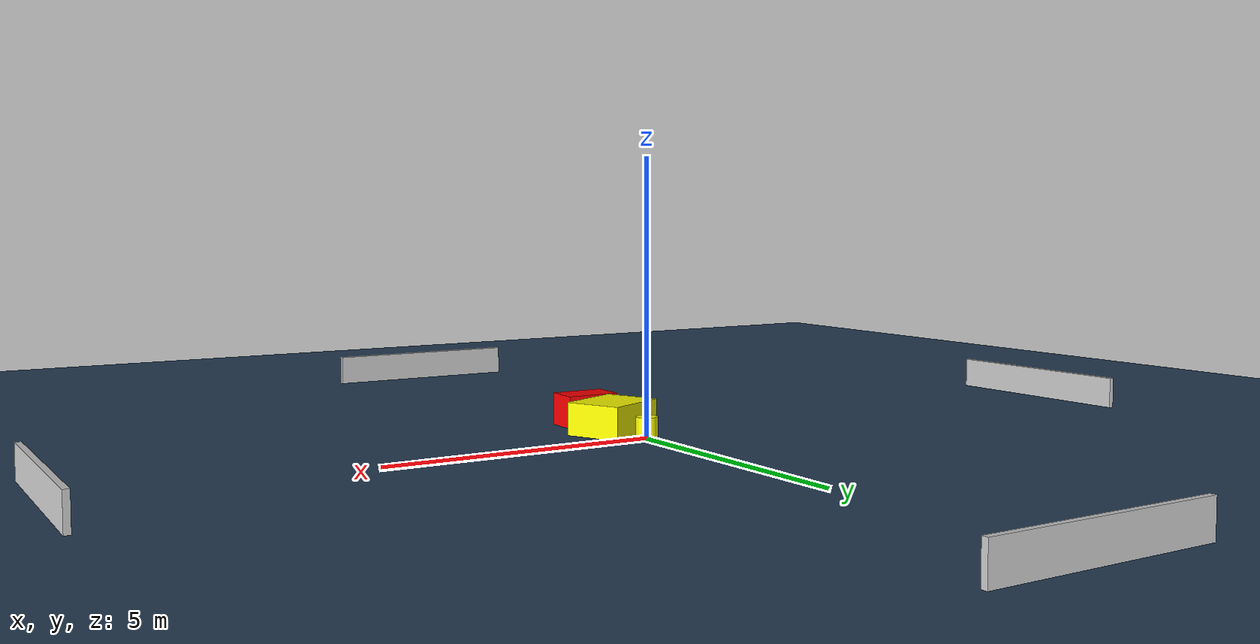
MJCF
<?xml version="1.0" ?>
<mujoco model="generated_environment">
  <option timestep="0.01" integrator="RK4" cone="elliptic"/>
  <default>
    <geom density="1"/>
  </default>
  <asset>
    <texture builtin="gradient" height="3072" name="skybox" rgb1="0.3 0.5 0.7" rgb2="0 0 0" type="skybox" width="512"/>
    <texture builtin="checker" height="300" name="groundplane" rgb1="0.2 0.3 0.4" rgb2="0.1 0.2 0.3" type="2d" width="300"/>
    <material name="groundplane" reflectance="0.2" texrepeat="5 5" texture="groundplane"/>
  </asset>
  <worldbody>
    <light dir="0 0 -1" directional="true" pos="0 0 1.5"/>
    <geom condim="3" friction="0.5 0.005 0.001" material="groundplane" name="floor" pos="0 0 0" size="0 0 0.05" type="plane"/>
    <body name="walls">
      <geom name="wall_1" condim="4" pos="-10.0 0.0 0.3" rgba="0.800000011920929 0.800000011920929 0.800000011920929 1.0" size="0.05 2.0 0.3" type="box"/>
      <geom name="wall_2" condim="4" pos="10.0 0.0 0.3" rgba="0.800000011920929 0.800000011920929 0.800000011920929 1.0" size="0.05 2.0 0.3" type="box"/>
      <geom name="wall_3" condim="4" pos="0.0 -10.0 0.3" rgba="0.800000011920929 0.800000011920929 0.800000011920929 1.0" size="2.0 0.05 0.3" type="box"/>
      <geom name="wall_4" condim="4" pos="0.0 10.0 0.3" rgba="0.800000011920929 0.800000011920929 0.800000011920929 1.0" size="2.0 0.05 0.3" type="box"/>
    </body>
    <body name="robot">
      <joint name="joint_x" type="slide" pos="0 0 0" axis="1 0 0"/>
      <joint name="joint_y" type="slide" pos="0 0 0" axis="0 1 0"/>
      <geom name="robot" type="cylinder" pos="0.0 0.0 0.2" size="0.2 0.2 0.0" mass="5.0" friction="1.0 0.005 0.0001" condim="4" rgba="1.0 1.0 0.0 1.0"/>
    </body>
    <body name="obstacle_1_movable">
      <geom name="obstacle_1_movable" condim="4" pos="0.2145468875939173 -0.8204437466602253 0.3" euler="0 0 204.19337932796032" friction="0.0 0.005 0.001" rgba="1.0 1.0 0.0 1.0" size="0.6389265701443577 0.5427912470251166 0.3" type="box" mass="0.1"/>
      <joint type="free"/>
    </body>
    <body name="obstacle_2_static">
      <geom name="obstacle_2_static" condim="4" pos="0.13850013289402732 -1.9503567671908097 0.3" euler="0 0 179.64177107376182" friction="0.0 0.005 0.001" rgba="1.0 0.0 0.0 1.0" size="0.5039443481656651 0.3200251529386796 0.3" type="box"/>
    </body>
  </worldbody>
  <actuator>
    <motor name="actuator_x" joint="joint_x" gear="1" ctrlrange="-1 1"/>
    <motor name="actuator_y" joint="joint_y" gear="1" ctrlrange="-1 1"/>
  </actuator>
</mujoco>
